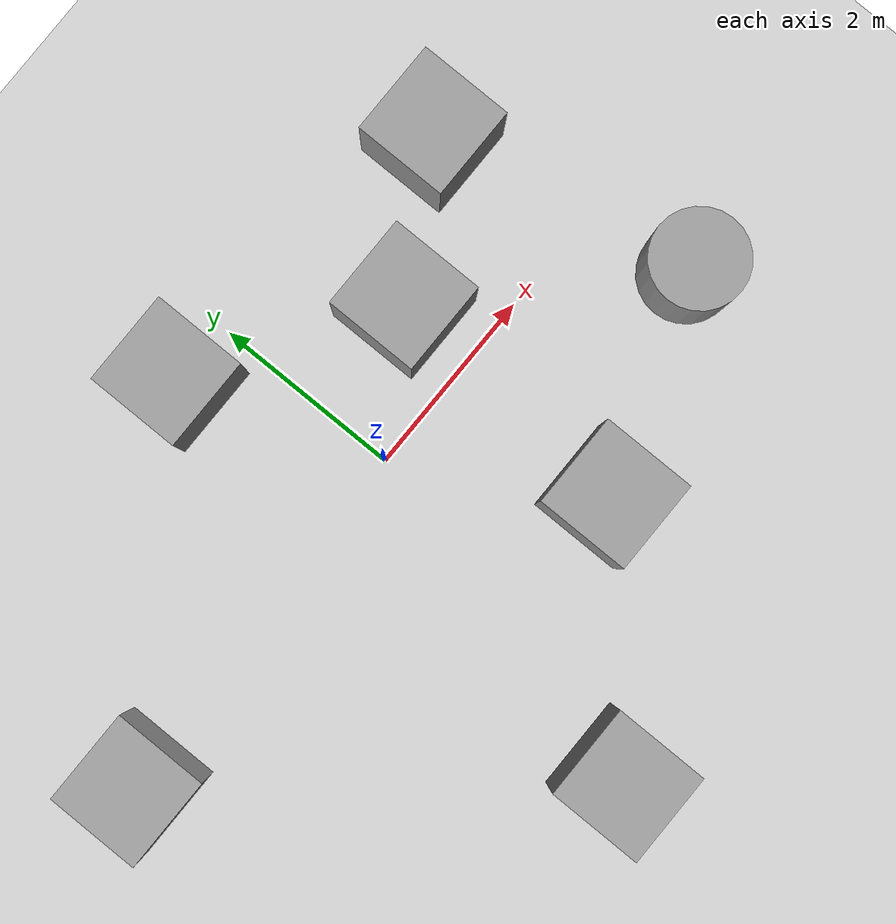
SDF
<sdf version="1.7">
 <world name="default">
  <model name="ground_plane">
   <static>1</static>
   <link name="link">
    <collision name="collision">
     <geometry><plane><normal>0 0 1</normal><size>100 100</size></plane></geometry>
     <surface>
      <contact><collide_bitmask>65535</collide_bitmask></contact>
      <friction><ode><mu>100</mu><mu2>50</mu2></ode></friction>
     </surface>
    </collision>
    <visual name="visual">
     <cast_shadows>0</cast_shadows>
     <geometry><plane><normal>0 0 1</normal><size>100 100</size></plane></geometry>
     <material>
      <script><uri>file://media/materials/scripts/gazebo.material</uri><name>Gazebo/Grey</name></script>
     </material>
    </visual>
   </link>
  </model>
  <gravity>0 0 -9.8</gravity>
  <magnetic_field>6e-06 2.3e-05 -4.2e-05</magnetic_field>
  <atmosphere type="adiabatic"/>
  <physics type="ode">
   <max_step_size>0.001</max_step_size>
   <real_time_factor>1</real_time_factor>
   <real_time_update_rate>1000</real_time_update_rate>
  </physics>
  <scene><ambient>0.4 0.4 0.4 1</ambient><background>0.7 0.7 0.7 1</background><shadows>1</shadows></scene>
  <audio><device>default</device></audio>
  <spherical_coordinates>
   <surface_model>EARTH_WGS84</surface_model>
   <latitude_deg>0</latitude_deg>
   <longitude_deg>0</longitude_deg>
   <elevation>0</elevation>
   <heading_deg>0</heading_deg>
  </spherical_coordinates>
  <light name="user_point_light_0" type="point">
   <pose>0.097614 -0.013947 1 0 -0 0</pose>
   <diffuse>0.5 0.5 0.5 1</diffuse>
   <specular>0.1 0.1 0.1 1</specular>
   <attenuation>
    <range>20</range>
    <constant>0.5</constant>
    <linear>0.01</linear>
    <quadratic>0.001</quadratic>
   </attenuation>
   <cast_shadows>0</cast_shadows>
   <direction>0 0 -1</direction>
  </light>
  <light name="sun" type="directional">
   <pose>-11.8242 13.956 10 0 -0 0</pose>
   <diffuse>0.8 0.8 0.8 1</diffuse>
   <specular>0.2 0.2 0.2 1</specular>
   <attenuation>
    <range>1000</range>
    <constant>0.9</constant>
    <linear>0.01</linear>
    <quadratic>0.001</quadratic>
   </attenuation>
   <direction>-0.5 0.1 -0.9</direction>
  </light>
  <model name="unit_box">
   <pose>1.28658 0.809995 0.499995 1e-05 -0 0</pose>
   <link name="link">
    <inertial>
     <mass>1</mass>
     <inertia>
      <ixx>0.166667</ixx>
      <ixy>0</ixy>
      <ixz>0</ixz>
      <iyy>0.166667</iyy>
      <iyz>0</iyz>
      <izz>0.166667</izz>
     </inertia>
    </inertial>
    <collision name="collision"><geometry><box><size>1 1 1</size></box></geometry></collision>
    <visual name="visual">
     <geometry><box><size>1 1 1</size></box></geometry>
     <material>
      <script><name>Gazebo/Grey</name><uri>file://media/materials/scripts/gazebo.material</uri></script>
     </material>
    </visual>
   </link>
  </model>
  <model name="unit_box_0">
   <pose>1.09533 -1.91185 0.499995 0 -1e-05 0</pose>
   <link name="link">
    <inertial>
     <mass>1</mass>
     <inertia>
      <ixx>0.166667</ixx>
      <ixy>0</ixy>
      <ixz>0</ixz>
      <iyy>0.166667</iyy>
      <iyz>0</iyz>
      <izz>0.166667</izz>
     </inertia>
    </inertial>
    <collision name="collision"><geometry><box><size>1 1 1</size></box></geometry></collision>
    <visual name="visual">
     <geometry><box><size>1 1 1</size></box></geometry>
     <material>
      <script><name>Gazebo/Grey</name><uri>file://media/materials/scripts/gazebo.material</uri></script>
     </material>
    </visual>
   </link>
  </model>
  <model name="unit_box_1">
   <pose>-0.943853 -3.71044 0.499995 1e-05 -0 0</pose>
   <link name="link">
    <inertial>
     <mass>1</mass>
     <inertia>
      <ixx>0.166667</ixx>
      <ixy>0</ixy>
      <ixz>0</ixz>
      <iyy>0.166667</iyy>
      <iyz>0</iyz>
      <izz>0.166667</izz>
     </inertia>
    </inertial>
    <collision name="collision"><geometry><box><size>1 1 1</size></box></geometry></collision>
    <visual name="visual">
     <geometry><box><size>1 1 1</size></box></geometry>
     <material>
      <script><name>Gazebo/Grey</name><uri>file://media/materials/scripts/gazebo.material</uri></script>
     </material>
    </visual>
   </link>
  </model>
  <model name="unit_box_2">
   <pose>-0.686101 2.08417 0.499995 0 -1e-05 0</pose>
   <link name="link">
    <inertial>
     <mass>1</mass>
     <inertia>
      <ixx>0.166667</ixx>
      <ixy>0</ixy>
      <ixz>0</ixz>
      <iyy>0.166667</iyy>
      <iyz>0</iyz>
      <izz>0.166667</izz>
     </inertia>
    </inertial>
    <collision name="collision"><geometry><box><size>1 1 1</size></box></geometry></collision>
    <visual name="visual">
     <geometry><box><size>1 1 1</size></box></geometry>
     <material>
      <script><name>Gazebo/Grey</name><uri>file://media/materials/scripts/gazebo.material</uri></script>
     </material>
    </visual>
   </link>
  </model>
  <model name="unit_box_3">
   <pose>-3.93074 -0.133219 0.499995 1e-05 -0 0</pose>
   <link name="link">
    <inertial>
     <mass>1</mass>
     <inertia>
      <ixx>0.166667</ixx>
      <ixy>0</ixy>
      <ixz>0</ixz>
      <iyy>0.166667</iyy>
      <iyz>0</iyz>
      <izz>0.166667</izz>
     </inertia>
    </inertial>
    <collision name="collision"><geometry><box><size>1 1 1</size></box></geometry></collision>
    <visual name="visual">
     <geometry><box><size>1 1 1</size></box></geometry>
     <material>
      <script><name>Gazebo/Grey</name><uri>file://media/materials/scripts/gazebo.material</uri></script>
     </material>
    </visual>
   </link>
  </model>
  <model name="unit_cylinder">
   <pose>3.31974 -1.13162 0.499993 -3e-06 -4e-06 -0</pose>
   <link name="link">
    <inertial>
     <mass>1</mass>
     <inertia><ixx>0.145833</ixx><ixy>0</ixy><ixz>0</ixz><iyy>0.145833</iyy><iyz>0</iyz><izz>0.125</izz></inertia>
    </inertial>
    <collision name="collision">
     <geometry><cylinder><radius>0.5</radius><length>1</length></cylinder></geometry>
    </collision>
    <visual name="visual">
     <geometry><cylinder><radius>0.5</radius><length>1</length></cylinder></geometry>
     <material>
      <script><name>Gazebo/Grey</name><uri>file://media/materials/scripts/gazebo.material</uri></script>
     </material>
    </visual>
   </link>
  </model>
  <model name="unit_box_4">
   <pose>2.74659 1.64965 0.499995 1e-05 -0 0</pose>
   <link name="link">
    <inertial>
     <mass>1</mass>
     <inertia>
      <ixx>0.166667</ixx>
      <ixy>0</ixy>
      <ixz>0</ixz>
      <iyy>0.166667</iyy>
      <iyz>0</iyz>
      <izz>0.166667</izz>
     </inertia>
    </inertial>
    <collision name="collision"><geometry><box><size>1 1 1</size></box></geometry></collision>
    <visual name="visual">
     <geometry><box><size>1 1 1</size></box></geometry>
     <material>
      <script><name>Gazebo/Grey</name><uri>file://media/materials/scripts/gazebo.material</uri></script>
     </material>
    </visual>
   </link>
  </model>
 </world>
</sdf>
